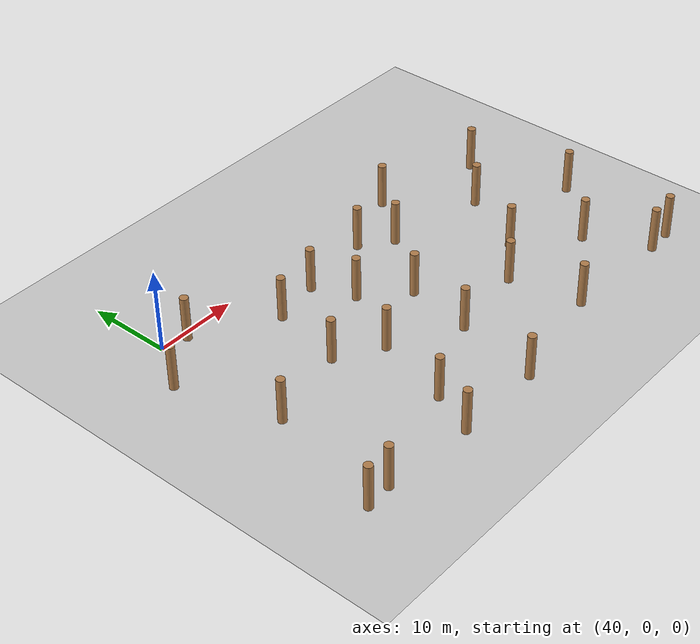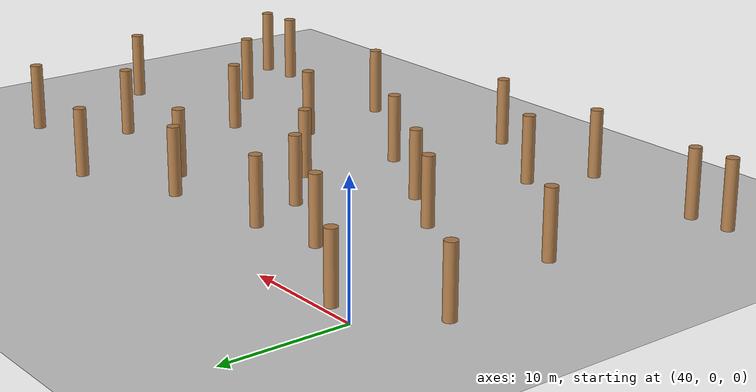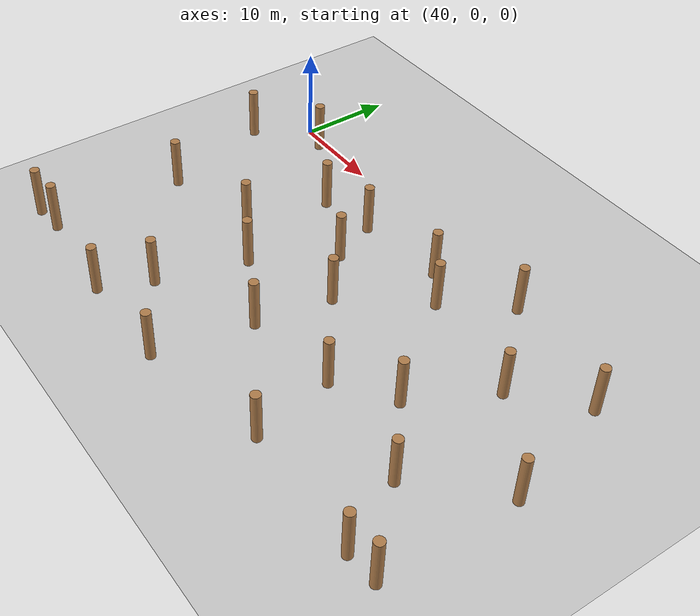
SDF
<sdf version="1.6">
 <world name="default">
  <model name="ground_plane">
   <static>1</static>
   <link name="link">
    <collision name="collision">
     <geometry><plane><normal>0 0 1</normal><size>100 100</size></plane></geometry>
     <surface><friction><ode><mu>100</mu><mu2>50</mu2></ode></friction></surface>
    </collision>
    <visual name="visual">
     <cast_shadows>0</cast_shadows>
     <geometry><plane><normal>0 0 1</normal><size>100 100</size></plane></geometry>
     <material>
      <script><uri>file://media/materials/scripts/gazebo.material</uri><name>Gazebo/Grey</name></script>
     </material>
    </visual>
   </link>
  </model>
  <model name="WoodPillars_4">
   <link name="link">
    <inertial>
     <mass>1</mass>
     <inertia><ixx>0.145833</ixx><ixy>0</ixy><ixz>0</ixz><iyy>0.145833</iyy><iyz>0</iyz><izz>0.125</izz></inertia>
    </inertial>
    <visual name="visual">
     <geometry><cylinder><radius>0.5</radius><length>5.50507</length></cylinder></geometry>
     <material>
      <script><name>Gazebo/Wood</name><uri>file://media/materials/scripts/gazebo.material</uri></script>
     </material>
    </visual>
    <collision name="collision">
     <geometry><cylinder><radius>0.5</radius><length>5.50507</length></cylinder></geometry>
     <surface>
      <friction>
       <ode><mu>1</mu><mu2>1</mu2><fdir1>0 0 0</fdir1><slip1>0</slip1><slip2>0</slip2></ode>
       <torsional>
        <coefficient>1</coefficient>
        <patch_radius>0</patch_radius>
        <surface_radius>0</surface_radius>
        <use_patch_radius>1</use_patch_radius>
        <ode><slip>0</slip></ode>
       </torsional>
      </friction>
      <bounce><restitution_coefficient>0</restitution_coefficient><threshold>1e+06</threshold></bounce>
      <contact>
       <collide_without_contact>0</collide_without_contact>
       <collide_without_contact_bitmask>1</collide_without_contact_bitmask>
       <collide_bitmask>1</collide_bitmask>
       <ode>
        <soft_cfm>0</soft_cfm>
        <soft_erp>0.2</soft_erp>
        <kp>1e+13</kp>
        <kd>1</kd>
        <max_vel>0.01</max_vel>
        <min_depth>0</min_depth>
       </ode>
       <bullet>
        <split_impulse>1</split_impulse>
        <split_impulse_penetration_threshold>-0.01</split_impulse_penetration_threshold>
        <soft_cfm>0</soft_cfm>
        <soft_erp>0.2</soft_erp>
        <kp>1e+13</kp>
        <kd>1</kd>
       </bullet>
      </contact>
     </surface>
    </collision>
   </link>
   <link name="link_clone">
    <inertial>
     <mass>1</mass>
     <inertia><ixx>0.145833</ixx><ixy>0</ixy><ixz>0</ixz><iyy>0.145833</iyy><iyz>0</iyz><izz>0.125</izz></inertia>
    </inertial>
    <pose>17.6954 -2.91348 -2e-06 0 -0 -0.001289</pose>
    <visual name="visual">
     <geometry><cylinder><radius>0.5</radius><length>5.50507</length></cylinder></geometry>
     <material>
      <script><name>Gazebo/Wood</name><uri>file://media/materials/scripts/gazebo.material</uri></script>
      <shader type="pixel"/>
     </material>
    </visual>
    <collision name="collision">
     <geometry><cylinder><radius>0.5</radius><length>5.50507</length></cylinder></geometry>
     <surface>
      <friction>
       <ode><mu>1</mu><mu2>1</mu2><fdir1>0 0 0</fdir1><slip1>0</slip1><slip2>0</slip2></ode>
       <torsional>
        <coefficient>1</coefficient>
        <patch_radius>0</patch_radius>
        <surface_radius>0</surface_radius>
        <use_patch_radius>1</use_patch_radius>
        <ode><slip>0</slip></ode>
       </torsional>
      </friction>
      <bounce><restitution_coefficient>0</restitution_coefficient><threshold>1e+06</threshold></bounce>
      <contact>
       <collide_without_contact>0</collide_without_contact>
       <collide_without_contact_bitmask>1</collide_without_contact_bitmask>
       <collide_bitmask>1</collide_bitmask>
       <ode>
        <soft_cfm>0</soft_cfm>
        <soft_erp>0.2</soft_erp>
        <kp>1e+13</kp>
        <kd>1</kd>
        <max_vel>0.01</max_vel>
        <min_depth>0</min_depth>
       </ode>
       <bullet>
        <split_impulse>1</split_impulse>
        <split_impulse_penetration_threshold>-0.01</split_impulse_penetration_threshold>
        <soft_cfm>0</soft_cfm>
        <soft_erp>0.2</soft_erp>
        <kp>1e+13</kp>
        <kd>1</kd>
       </bullet>
      </contact>
     </surface>
    </collision>
   </link>
   <link name="link_clone_10">
    <inertial>
     <mass>1</mass>
     <inertia><ixx>0.145833</ixx><ixy>0</ixy><ixz>0</ixz><iyy>0.145833</iyy><iyz>0</iyz><izz>0.125</izz></inertia>
    </inertial>
    <pose>2.50237 12.8939 0 0 -0 -0.001289</pose>
    <visual name="visual">
     <geometry><cylinder><radius>0.5</radius><length>5.50507</length></cylinder></geometry>
     <material>
      <script><name>Gazebo/Wood</name><uri>file://media/materials/scripts/gazebo.material</uri></script>
      <shader type="pixel"/>
     </material>
    </visual>
    <collision name="collision">
     <geometry><cylinder><radius>0.5</radius><length>5.50507</length></cylinder></geometry>
     <surface>
      <friction>
       <ode><mu>1</mu><mu2>1</mu2><fdir1>0 0 0</fdir1><slip1>0</slip1><slip2>0</slip2></ode>
       <torsional>
        <coefficient>1</coefficient>
        <patch_radius>0</patch_radius>
        <surface_radius>0</surface_radius>
        <use_patch_radius>1</use_patch_radius>
        <ode><slip>0</slip></ode>
       </torsional>
      </friction>
      <bounce><restitution_coefficient>0</restitution_coefficient><threshold>1e+06</threshold></bounce>
      <contact>
       <collide_without_contact>0</collide_without_contact>
       <collide_without_contact_bitmask>1</collide_without_contact_bitmask>
       <collide_bitmask>1</collide_bitmask>
       <ode>
        <soft_cfm>0</soft_cfm>
        <soft_erp>0.2</soft_erp>
        <kp>1e+13</kp>
        <kd>1</kd>
        <max_vel>0.01</max_vel>
        <min_depth>0</min_depth>
       </ode>
       <bullet>
        <split_impulse>1</split_impulse>
        <split_impulse_penetration_threshold>-0.01</split_impulse_penetration_threshold>
        <soft_cfm>0</soft_cfm>
        <soft_erp>0.2</soft_erp>
        <kp>1e+13</kp>
        <kd>1</kd>
       </bullet>
      </contact>
     </surface>
    </collision>
   </link>
   <link name="link_clone_11">
    <inertial>
     <mass>1</mass>
     <inertia><ixx>0.145833</ixx><ixy>0</ixy><ixz>0</ixz><iyy>0.145833</iyy><iyz>0</iyz><izz>0.125</izz></inertia>
    </inertial>
    <pose>20.1245 17.4079 -2e-06 0 -0 -0.001289</pose>
    <visual name="visual">
     <geometry><cylinder><radius>0.5</radius><length>5.50507</length></cylinder></geometry>
     <material>
      <script><name>Gazebo/Wood</name><uri>file://media/materials/scripts/gazebo.material</uri></script>
      <shader type="pixel"/>
     </material>
    </visual>
    <collision name="collision">
     <geometry><cylinder><radius>0.5</radius><length>5.50507</length></cylinder></geometry>
     <surface>
      <friction>
       <ode><mu>1</mu><mu2>1</mu2><fdir1>0 0 0</fdir1><slip1>0</slip1><slip2>0</slip2></ode>
       <torsional>
        <coefficient>1</coefficient>
        <patch_radius>0</patch_radius>
        <surface_radius>0</surface_radius>
        <use_patch_radius>1</use_patch_radius>
        <ode><slip>0</slip></ode>
       </torsional>
      </friction>
      <bounce><restitution_coefficient>0</restitution_coefficient><threshold>1e+06</threshold></bounce>
      <contact>
       <collide_without_contact>0</collide_without_contact>
       <collide_without_contact_bitmask>1</collide_without_contact_bitmask>
       <collide_bitmask>1</collide_bitmask>
       <ode>
        <soft_cfm>0</soft_cfm>
        <soft_erp>0.2</soft_erp>
        <kp>1e+13</kp>
        <kd>1</kd>
        <max_vel>0.01</max_vel>
        <min_depth>0</min_depth>
       </ode>
       <bullet>
        <split_impulse>1</split_impulse>
        <split_impulse_penetration_threshold>-0.01</split_impulse_penetration_threshold>
        <soft_cfm>0</soft_cfm>
        <soft_erp>0.2</soft_erp>
        <kp>1e+13</kp>
        <kd>1</kd>
       </bullet>
      </contact>
     </surface>
    </collision>
   </link>
   <link name="link_clone_12">
    <inertial>
     <mass>1</mass>
     <inertia><ixx>0.145833</ixx><ixy>0</ixy><ixz>0</ixz><iyy>0.145833</iyy><iyz>0</iyz><izz>0.125</izz></inertia>
    </inertial>
    <pose>36.6063 2.3916 -3e-06 0 -0 -0.001289</pose>
    <visual name="visual">
     <geometry><cylinder><radius>0.5</radius><length>5.50507</length></cylinder></geometry>
     <material>
      <script><name>Gazebo/Wood</name><uri>file://media/materials/scripts/gazebo.material</uri></script>
      <shader type="pixel"/>
     </material>
    </visual>
    <collision name="collision">
     <geometry><cylinder><radius>0.5</radius><length>5.50507</length></cylinder></geometry>
     <surface>
      <friction>
       <ode><mu>1</mu><mu2>1</mu2><fdir1>0 0 0</fdir1><slip1>0</slip1><slip2>0</slip2></ode>
       <torsional>
        <coefficient>1</coefficient>
        <patch_radius>0</patch_radius>
        <surface_radius>0</surface_radius>
        <use_patch_radius>1</use_patch_radius>
        <ode><slip>0</slip></ode>
       </torsional>
      </friction>
      <bounce><restitution_coefficient>0</restitution_coefficient><threshold>1e+06</threshold></bounce>
      <contact>
       <collide_without_contact>0</collide_without_contact>
       <collide_without_contact_bitmask>1</collide_without_contact_bitmask>
       <collide_bitmask>1</collide_bitmask>
       <ode>
        <soft_cfm>0</soft_cfm>
        <soft_erp>0.2</soft_erp>
        <kp>1e+13</kp>
        <kd>1</kd>
        <max_vel>0.01</max_vel>
        <min_depth>0</min_depth>
       </ode>
       <bullet>
        <split_impulse>1</split_impulse>
        <split_impulse_penetration_threshold>-0.01</split_impulse_penetration_threshold>
        <soft_cfm>0</soft_cfm>
        <soft_erp>0.2</soft_erp>
        <kp>1e+13</kp>
        <kd>1</kd>
       </bullet>
      </contact>
     </surface>
    </collision>
   </link>
   <link name="link_clone_16">
    <inertial>
     <mass>1</mass>
     <inertia><ixx>0.145833</ixx><ixy>0</ixy><ixz>0</ixz><iyy>0.145833</iyy><iyz>0</iyz><izz>0.125</izz></inertia>
    </inertial>
    <pose>32.9662 -11.9429 -3e-06 0 -0 -0.001289</pose>
    <visual name="visual">
     <geometry><cylinder><radius>0.5</radius><length>5.50507</length></cylinder></geometry>
     <material>
      <script><name>Gazebo/Wood</name><uri>file://media/materials/scripts/gazebo.material</uri></script>
      <shader type="pixel"/>
     </material>
    </visual>
    <collision name="collision">
     <geometry><cylinder><radius>0.5</radius><length>5.50507</length></cylinder></geometry>
     <surface>
      <friction>
       <ode><mu>1</mu><mu2>1</mu2><fdir1>0 0 0</fdir1><slip1>0</slip1><slip2>0</slip2></ode>
       <torsional>
        <coefficient>1</coefficient>
        <patch_radius>0</patch_radius>
        <surface_radius>0</surface_radius>
        <use_patch_radius>1</use_patch_radius>
        <ode><slip>0</slip></ode>
       </torsional>
      </friction>
      <bounce><restitution_coefficient>0</restitution_coefficient><threshold>1e+06</threshold></bounce>
      <contact>
       <collide_without_contact>0</collide_without_contact>
       <collide_without_contact_bitmask>1</collide_without_contact_bitmask>
       <collide_bitmask>1</collide_bitmask>
       <ode>
        <soft_cfm>0</soft_cfm>
        <soft_erp>0.2</soft_erp>
        <kp>1e+13</kp>
        <kd>1</kd>
        <max_vel>0.01</max_vel>
        <min_depth>0</min_depth>
       </ode>
       <bullet>
        <split_impulse>1</split_impulse>
        <split_impulse_penetration_threshold>-0.01</split_impulse_penetration_threshold>
        <soft_cfm>0</soft_cfm>
        <soft_erp>0.2</soft_erp>
        <kp>1e+13</kp>
        <kd>1</kd>
       </bullet>
      </contact>
     </surface>
    </collision>
   </link>
   <link name="link_clone_17">
    <inertial>
     <mass>1</mass>
     <inertia><ixx>0.145833</ixx><ixy>0</ixy><ixz>0</ixz><iyy>0.145833</iyy><iyz>0</iyz><izz>0.125</izz></inertia>
    </inertial>
    <pose>19.3784 -11.4604 -2e-06 0 -0 -0.001289</pose>
    <visual name="visual">
     <geometry><cylinder><radius>0.5</radius><length>5.50507</length></cylinder></geometry>
     <material>
      <script><name>Gazebo/Wood</name><uri>file://media/materials/scripts/gazebo.material</uri></script>
      <shader type="pixel"/>
     </material>
    </visual>
    <collision name="collision">
     <geometry><cylinder><radius>0.5</radius><length>5.50507</length></cylinder></geometry>
     <surface>
      <friction>
       <ode><mu>1</mu><mu2>1</mu2><fdir1>0 0 0</fdir1><slip1>0</slip1><slip2>0</slip2></ode>
       <torsional>
        <coefficient>1</coefficient>
        <patch_radius>0</patch_radius>
        <surface_radius>0</surface_radius>
        <use_patch_radius>1</use_patch_radius>
        <ode><slip>0</slip></ode>
       </torsional>
      </friction>
      <bounce><restitution_coefficient>0</restitution_coefficient><threshold>1e+06</threshold></bounce>
      <contact>
       <collide_without_contact>0</collide_without_contact>
       <collide_without_contact_bitmask>1</collide_without_contact_bitmask>
       <collide_bitmask>1</collide_bitmask>
       <ode>
        <soft_cfm>0</soft_cfm>
        <soft_erp>0.2</soft_erp>
        <kp>1e+13</kp>
        <kd>1</kd>
        <max_vel>0.01</max_vel>
        <min_depth>0</min_depth>
       </ode>
       <bullet>
        <split_impulse>1</split_impulse>
        <split_impulse_penetration_threshold>-0.01</split_impulse_penetration_threshold>
        <soft_cfm>0</soft_cfm>
        <soft_erp>0.2</soft_erp>
        <kp>1e+13</kp>
        <kd>1</kd>
       </bullet>
      </contact>
     </surface>
    </collision>
   </link>
   <link name="link_clone_18">
    <inertial>
     <mass>1</mass>
     <inertia><ixx>0.145833</ixx><ixy>0</ixy><ixz>0</ixz><iyy>0.145833</iyy><iyz>0</iyz><izz>0.125</izz></inertia>
    </inertial>
    <pose>9.1573 3.67739 -1e-06 0 -0 -0.001289</pose>
    <visual name="visual">
     <geometry><cylinder><radius>0.5</radius><length>5.50507</length></cylinder></geometry>
     <material>
      <script><name>Gazebo/Wood</name><uri>file://media/materials/scripts/gazebo.material</uri></script>
      <shader type="pixel"/>
     </material>
    </visual>
    <collision name="collision">
     <geometry><cylinder><radius>0.5</radius><length>5.50507</length></cylinder></geometry>
     <surface>
      <friction>
       <ode><mu>1</mu><mu2>1</mu2><fdir1>0 0 0</fdir1><slip1>0</slip1><slip2>0</slip2></ode>
       <torsional>
        <coefficient>1</coefficient>
        <patch_radius>0</patch_radius>
        <surface_radius>0</surface_radius>
        <use_patch_radius>1</use_patch_radius>
        <ode><slip>0</slip></ode>
       </torsional>
      </friction>
      <bounce><restitution_coefficient>0</restitution_coefficient><threshold>1e+06</threshold></bounce>
      <contact>
       <collide_without_contact>0</collide_without_contact>
       <collide_without_contact_bitmask>1</collide_without_contact_bitmask>
       <collide_bitmask>1</collide_bitmask>
       <ode>
        <soft_cfm>0</soft_cfm>
        <soft_erp>0.2</soft_erp>
        <kp>1e+13</kp>
        <kd>1</kd>
        <max_vel>0.01</max_vel>
        <min_depth>0</min_depth>
       </ode>
       <bullet>
        <split_impulse>1</split_impulse>
        <split_impulse_penetration_threshold>-0.01</split_impulse_penetration_threshold>
        <soft_cfm>0</soft_cfm>
        <soft_erp>0.2</soft_erp>
        <kp>1e+13</kp>
        <kd>1</kd>
       </bullet>
      </contact>
     </surface>
    </collision>
   </link>
   <link name="link_clone_19">
    <inertial>
     <mass>1</mass>
     <inertia><ixx>0.145833</ixx><ixy>0</ixy><ixz>0</ixz><iyy>0.145833</iyy><iyz>0</iyz><izz>0.125</izz></inertia>
    </inertial>
    <pose>-3.28611 11.8265 -0 0 -0 -0.001289</pose>
    <visual name="visual">
     <geometry><cylinder><radius>0.5</radius><length>5.50507</length></cylinder></geometry>
     <material>
      <script><name>Gazebo/Wood</name><uri>file://media/materials/scripts/gazebo.material</uri></script>
      <shader type="pixel"/>
     </material>
    </visual>
    <collision name="collision">
     <geometry><cylinder><radius>0.5</radius><length>5.50507</length></cylinder></geometry>
     <surface>
      <friction>
       <ode><mu>1</mu><mu2>1</mu2><fdir1>0 0 0</fdir1><slip1>0</slip1><slip2>0</slip2></ode>
       <torsional>
        <coefficient>1</coefficient>
        <patch_radius>0</patch_radius>
        <surface_radius>0</surface_radius>
        <use_patch_radius>1</use_patch_radius>
        <ode><slip>0</slip></ode>
       </torsional>
      </friction>
      <bounce><restitution_coefficient>0</restitution_coefficient><threshold>1e+06</threshold></bounce>
      <contact>
       <collide_without_contact>0</collide_without_contact>
       <collide_without_contact_bitmask>1</collide_without_contact_bitmask>
       <collide_bitmask>1</collide_bitmask>
       <ode>
        <soft_cfm>0</soft_cfm>
        <soft_erp>0.2</soft_erp>
        <kp>1e+13</kp>
        <kd>1</kd>
        <max_vel>0.01</max_vel>
        <min_depth>0</min_depth>
       </ode>
       <bullet>
        <split_impulse>1</split_impulse>
        <split_impulse_penetration_threshold>-0.01</split_impulse_penetration_threshold>
        <soft_cfm>0</soft_cfm>
        <soft_erp>0.2</soft_erp>
        <kp>1e+13</kp>
        <kd>1</kd>
       </bullet>
      </contact>
     </surface>
    </collision>
   </link>
   <link name="link_clone_20">
    <inertial>
     <mass>1</mass>
     <inertia><ixx>0.145833</ixx><ixy>0</ixy><ixz>0</ixz><iyy>0.145833</iyy><iyz>0</iyz><izz>0.125</izz></inertia>
    </inertial>
    <pose>-2.64423 -9.12396 -0 0 -0 -0.001289</pose>
    <visual name="visual">
     <geometry><cylinder><radius>0.5</radius><length>5.50507</length></cylinder></geometry>
     <material>
      <script><name>Gazebo/Wood</name><uri>file://media/materials/scripts/gazebo.material</uri></script>
      <shader type="pixel"/>
     </material>
    </visual>
    <collision name="collision">
     <geometry><cylinder><radius>0.5</radius><length>5.50507</length></cylinder></geometry>
     <surface>
      <friction>
       <ode><mu>1</mu><mu2>1</mu2><fdir1>0 0 0</fdir1><slip1>0</slip1><slip2>0</slip2></ode>
       <torsional>
        <coefficient>1</coefficient>
        <patch_radius>0</patch_radius>
        <surface_radius>0</surface_radius>
        <use_patch_radius>1</use_patch_radius>
        <ode><slip>0</slip></ode>
       </torsional>
      </friction>
      <bounce><restitution_coefficient>0</restitution_coefficient><threshold>1e+06</threshold></bounce>
      <contact>
       <collide_without_contact>0</collide_without_contact>
       <collide_without_contact_bitmask>1</collide_without_contact_bitmask>
       <collide_bitmask>1</collide_bitmask>
       <ode>
        <soft_cfm>0</soft_cfm>
        <soft_erp>0.2</soft_erp>
        <kp>1e+13</kp>
        <kd>1</kd>
        <max_vel>0.01</max_vel>
        <min_depth>0</min_depth>
       </ode>
       <bullet>
        <split_impulse>1</split_impulse>
        <split_impulse_penetration_threshold>-0.01</split_impulse_penetration_threshold>
        <soft_cfm>0</soft_cfm>
        <soft_erp>0.2</soft_erp>
        <kp>1e+13</kp>
        <kd>1</kd>
       </bullet>
      </contact>
     </surface>
    </collision>
   </link>
   <link name="link_clone_21">
    <inertial>
     <mass>1</mass>
     <inertia><ixx>0.145833</ixx><ixy>0</ixy><ixz>0</ixz><iyy>0.145833</iyy><iyz>0</iyz><izz>0.125</izz></inertia>
    </inertial>
    <pose>15.2748 11.406 -1e-06 0 -0 -0.001289</pose>
    <visual name="visual">
     <geometry><cylinder><radius>0.5</radius><length>5.50507</length></cylinder></geometry>
     <material>
      <script><name>Gazebo/Wood</name><uri>file://media/materials/scripts/gazebo.material</uri></script>
      <shader type="pixel"/>
     </material>
    </visual>
    <collision name="collision">
     <geometry><cylinder><radius>0.5</radius><length>5.50507</length></cylinder></geometry>
     <surface>
      <friction>
       <ode><mu>1</mu><mu2>1</mu2><fdir1>0 0 0</fdir1><slip1>0</slip1><slip2>0</slip2></ode>
       <torsional>
        <coefficient>1</coefficient>
        <patch_radius>0</patch_radius>
        <surface_radius>0</surface_radius>
        <use_patch_radius>1</use_patch_radius>
        <ode><slip>0</slip></ode>
       </torsional>
      </friction>
      <bounce><restitution_coefficient>0</restitution_coefficient><threshold>1e+06</threshold></bounce>
      <contact>
       <collide_without_contact>0</collide_without_contact>
       <collide_without_contact_bitmask>1</collide_without_contact_bitmask>
       <collide_bitmask>1</collide_bitmask>
       <ode>
        <soft_cfm>0</soft_cfm>
        <soft_erp>0.2</soft_erp>
        <kp>1e+13</kp>
        <kd>1</kd>
        <max_vel>0.01</max_vel>
        <min_depth>0</min_depth>
       </ode>
       <bullet>
        <split_impulse>1</split_impulse>
        <split_impulse_penetration_threshold>-0.01</split_impulse_penetration_threshold>
        <soft_cfm>0</soft_cfm>
        <soft_erp>0.2</soft_erp>
        <kp>1e+13</kp>
        <kd>1</kd>
       </bullet>
      </contact>
     </surface>
    </collision>
   </link>
   <link name="link_clone_22">
    <inertial>
     <mass>1</mass>
     <inertia><ixx>0.145833</ixx><ixy>0</ixy><ixz>0</ixz><iyy>0.145833</iyy><iyz>0</iyz><izz>0.125</izz></inertia>
    </inertial>
    <pose>27.313 9.05961 -2e-06 0 -0 -0.001289</pose>
    <visual name="visual">
     <geometry><cylinder><radius>0.5</radius><length>5.50507</length></cylinder></geometry>
     <material>
      <script><name>Gazebo/Wood</name><uri>file://media/materials/scripts/gazebo.material</uri></script>
      <shader type="pixel"/>
     </material>
    </visual>
    <collision name="collision">
     <geometry><cylinder><radius>0.5</radius><length>5.50507</length></cylinder></geometry>
     <surface>
      <friction>
       <ode><mu>1</mu><mu2>1</mu2><fdir1>0 0 0</fdir1><slip1>0</slip1><slip2>0</slip2></ode>
       <torsional>
        <coefficient>1</coefficient>
        <patch_radius>0</patch_radius>
        <surface_radius>0</surface_radius>
        <use_patch_radius>1</use_patch_radius>
        <ode><slip>0</slip></ode>
       </torsional>
      </friction>
      <bounce><restitution_coefficient>0</restitution_coefficient><threshold>1e+06</threshold></bounce>
      <contact>
       <collide_without_contact>0</collide_without_contact>
       <collide_without_contact_bitmask>1</collide_without_contact_bitmask>
       <collide_bitmask>1</collide_bitmask>
       <ode>
        <soft_cfm>0</soft_cfm>
        <soft_erp>0.2</soft_erp>
        <kp>1e+13</kp>
        <kd>1</kd>
        <max_vel>0.01</max_vel>
        <min_depth>0</min_depth>
       </ode>
       <bullet>
        <split_impulse>1</split_impulse>
        <split_impulse_penetration_threshold>-0.01</split_impulse_penetration_threshold>
        <soft_cfm>0</soft_cfm>
        <soft_erp>0.2</soft_erp>
        <kp>1e+13</kp>
        <kd>1</kd>
       </bullet>
      </contact>
     </surface>
    </collision>
   </link>
   <link name="link_clone_23">
    <inertial>
     <mass>1</mass>
     <inertia><ixx>0.145833</ixx><ixy>0</ixy><ixz>0</ixz><iyy>0.145833</iyy><iyz>0</iyz><izz>0.125</izz></inertia>
    </inertial>
    <pose>29.5176 -4.71623 -3e-06 0 -0 -0.001289</pose>
    <visual name="visual">
     <geometry><cylinder><radius>0.5</radius><length>5.50507</length></cylinder></geometry>
     <material>
      <script><name>Gazebo/Wood</name><uri>file://media/materials/scripts/gazebo.material</uri></script>
      <shader type="pixel"/>
     </material>
    </visual>
    <collision name="collision">
     <geometry><cylinder><radius>0.5</radius><length>5.50507</length></cylinder></geometry>
     <surface>
      <friction>
       <ode><mu>1</mu><mu2>1</mu2><fdir1>0 0 0</fdir1><slip1>0</slip1><slip2>0</slip2></ode>
       <torsional>
        <coefficient>1</coefficient>
        <patch_radius>0</patch_radius>
        <surface_radius>0</surface_radius>
        <use_patch_radius>1</use_patch_radius>
        <ode><slip>0</slip></ode>
       </torsional>
      </friction>
      <bounce><restitution_coefficient>0</restitution_coefficient><threshold>1e+06</threshold></bounce>
      <contact>
       <collide_without_contact>0</collide_without_contact>
       <collide_without_contact_bitmask>1</collide_without_contact_bitmask>
       <collide_bitmask>1</collide_bitmask>
       <ode>
        <soft_cfm>0</soft_cfm>
        <soft_erp>0.2</soft_erp>
        <kp>1e+13</kp>
        <kd>1</kd>
        <max_vel>0.01</max_vel>
        <min_depth>0</min_depth>
       </ode>
       <bullet>
        <split_impulse>1</split_impulse>
        <split_impulse_penetration_threshold>-0.01</split_impulse_penetration_threshold>
        <soft_cfm>0</soft_cfm>
        <soft_erp>0.2</soft_erp>
        <kp>1e+13</kp>
        <kd>1</kd>
       </bullet>
      </contact>
     </surface>
    </collision>
   </link>
   <link name="link_clone_24">
    <inertial>
     <mass>1</mass>
     <inertia><ixx>0.145833</ixx><ixy>0</ixy><ixz>0</ixz><iyy>0.145833</iyy><iyz>0</iyz><izz>0.125</izz></inertia>
    </inertial>
    <pose>7.84688 -4.26113 -1e-06 0 -0 -0.001289</pose>
    <visual name="visual">
     <geometry><cylinder><radius>0.5</radius><length>5.50507</length></cylinder></geometry>
     <material>
      <script><name>Gazebo/Wood</name><uri>file://media/materials/scripts/gazebo.material</uri></script>
      <shader type="pixel"/>
     </material>
    </visual>
    <collision name="collision">
     <geometry><cylinder><radius>0.5</radius><length>5.50507</length></cylinder></geometry>
     <surface>
      <friction>
       <ode><mu>1</mu><mu2>1</mu2><fdir1>0 0 0</fdir1><slip1>0</slip1><slip2>0</slip2></ode>
       <torsional>
        <coefficient>1</coefficient>
        <patch_radius>0</patch_radius>
        <surface_radius>0</surface_radius>
        <use_patch_radius>1</use_patch_radius>
        <ode><slip>0</slip></ode>
       </torsional>
      </friction>
      <bounce><restitution_coefficient>0</restitution_coefficient><threshold>1e+06</threshold></bounce>
      <contact>
       <collide_without_contact>0</collide_without_contact>
       <collide_without_contact_bitmask>1</collide_without_contact_bitmask>
       <collide_bitmask>1</collide_bitmask>
       <ode>
        <soft_cfm>0</soft_cfm>
        <soft_erp>0.2</soft_erp>
        <kp>1e+13</kp>
        <kd>1</kd>
        <max_vel>0.01</max_vel>
        <min_depth>0</min_depth>
       </ode>
       <bullet>
        <split_impulse>1</split_impulse>
        <split_impulse_penetration_threshold>-0.01</split_impulse_penetration_threshold>
        <soft_cfm>0</soft_cfm>
        <soft_erp>0.2</soft_erp>
        <kp>1e+13</kp>
        <kd>1</kd>
       </bullet>
      </contact>
     </surface>
    </collision>
   </link>
   <link name="link_clone_25">
    <inertial>
     <mass>1</mass>
     <inertia><ixx>0.145833</ixx><ixy>0</ixy><ixz>0</ixz><iyy>0.145833</iyy><iyz>0</iyz><izz>0.125</izz></inertia>
    </inertial>
    <pose>11.7271 14.0632 -1e-06 0 -0 -0.001289</pose>
    <visual name="visual">
     <geometry><cylinder><radius>0.5</radius><length>5.50507</length></cylinder></geometry>
     <material>
      <script><name>Gazebo/Wood</name><uri>file://media/materials/scripts/gazebo.material</uri></script>
      <shader type="pixel"/>
     </material>
    </visual>
    <collision name="collision">
     <geometry><cylinder><radius>0.5</radius><length>5.50507</length></cylinder></geometry>
     <surface>
      <friction>
       <ode><mu>1</mu><mu2>1</mu2><fdir1>0 0 0</fdir1><slip1>0</slip1><slip2>0</slip2></ode>
       <torsional>
        <coefficient>1</coefficient>
        <patch_radius>0</patch_radius>
        <surface_radius>0</surface_radius>
        <use_patch_radius>1</use_patch_radius>
        <ode><slip>0</slip></ode>
       </torsional>
      </friction>
      <bounce><restitution_coefficient>0</restitution_coefficient><threshold>1e+06</threshold></bounce>
      <contact>
       <collide_without_contact>0</collide_without_contact>
       <collide_without_contact_bitmask>1</collide_without_contact_bitmask>
       <collide_bitmask>1</collide_bitmask>
       <ode>
        <soft_cfm>0</soft_cfm>
        <soft_erp>0.2</soft_erp>
        <kp>1e+13</kp>
        <kd>1</kd>
        <max_vel>0.01</max_vel>
        <min_depth>0</min_depth>
       </ode>
       <bullet>
        <split_impulse>1</split_impulse>
        <split_impulse_penetration_threshold>-0.01</split_impulse_penetration_threshold>
        <soft_cfm>0</soft_cfm>
        <soft_erp>0.2</soft_erp>
        <kp>1e+13</kp>
        <kd>1</kd>
       </bullet>
      </contact>
     </surface>
    </collision>
   </link>
   <link name="link_clone_30">
    <inertial>
     <mass>1</mass>
     <inertia><ixx>0.145833</ixx><ixy>0</ixy><ixz>0</ixz><iyy>0.145833</iyy><iyz>0</iyz><izz>0.125</izz></inertia>
    </inertial>
    <pose>4.46339 7.97492 0 0 -0 -0.001289</pose>
    <visual name="visual">
     <geometry><cylinder><radius>0.5</radius><length>5.50507</length></cylinder></geometry>
     <material>
      <script><name>Gazebo/Wood</name><uri>file://media/materials/scripts/gazebo.material</uri></script>
      <shader type="pixel"/>
     </material>
    </visual>
    <collision name="collision">
     <geometry><cylinder><radius>0.5</radius><length>5.50507</length></cylinder></geometry>
     <surface>
      <friction>
       <ode><mu>1</mu><mu2>1</mu2><fdir1>0 0 0</fdir1><slip1>0</slip1><slip2>0</slip2></ode>
       <torsional>
        <coefficient>1</coefficient>
        <patch_radius>0</patch_radius>
        <surface_radius>0</surface_radius>
        <use_patch_radius>1</use_patch_radius>
        <ode><slip>0</slip></ode>
       </torsional>
      </friction>
      <bounce><restitution_coefficient>0</restitution_coefficient><threshold>1e+06</threshold></bounce>
      <contact>
       <collide_without_contact>0</collide_without_contact>
       <collide_without_contact_bitmask>1</collide_without_contact_bitmask>
       <collide_bitmask>1</collide_bitmask>
       <ode>
        <soft_cfm>0</soft_cfm>
        <soft_erp>0.2</soft_erp>
        <kp>1e+13</kp>
        <kd>1</kd>
        <max_vel>0.01</max_vel>
        <min_depth>0</min_depth>
       </ode>
       <bullet>
        <split_impulse>1</split_impulse>
        <split_impulse_penetration_threshold>-0.01</split_impulse_penetration_threshold>
        <soft_cfm>0</soft_cfm>
        <soft_erp>0.2</soft_erp>
        <kp>1e+13</kp>
        <kd>1</kd>
       </bullet>
      </contact>
     </surface>
    </collision>
   </link>
   <link name="link_clone_32">
    <inertial>
     <mass>1</mass>
     <inertia><ixx>0.145833</ixx><ixy>0</ixy><ixz>0</ixz><iyy>0.145833</iyy><iyz>0</iyz><izz>0.125</izz></inertia>
    </inertial>
    <pose>-4.82669 -14.2698 -0 0 -0 -0.001289</pose>
    <visual name="visual">
     <geometry><cylinder><radius>0.5</radius><length>5.50507</length></cylinder></geometry>
     <material>
      <script><name>Gazebo/Wood</name><uri>file://media/materials/scripts/gazebo.material</uri></script>
      <shader type="pixel"/>
     </material>
    </visual>
    <collision name="collision">
     <geometry><cylinder><radius>0.5</radius><length>5.50507</length></cylinder></geometry>
     <surface>
      <friction>
       <ode><mu>1</mu><mu2>1</mu2><fdir1>0 0 0</fdir1><slip1>0</slip1><slip2>0</slip2></ode>
       <torsional>
        <coefficient>1</coefficient>
        <patch_radius>0</patch_radius>
        <surface_radius>0</surface_radius>
        <use_patch_radius>1</use_patch_radius>
        <ode><slip>0</slip></ode>
       </torsional>
      </friction>
      <bounce><restitution_coefficient>0</restitution_coefficient><threshold>1e+06</threshold></bounce>
      <contact>
       <collide_without_contact>0</collide_without_contact>
       <collide_without_contact_bitmask>1</collide_without_contact_bitmask>
       <collide_bitmask>1</collide_bitmask>
       <ode>
        <soft_cfm>0</soft_cfm>
        <soft_erp>0.2</soft_erp>
        <kp>1e+13</kp>
        <kd>1</kd>
        <max_vel>0.01</max_vel>
        <min_depth>0</min_depth>
       </ode>
       <bullet>
        <split_impulse>1</split_impulse>
        <split_impulse_penetration_threshold>-0.01</split_impulse_penetration_threshold>
        <soft_cfm>0</soft_cfm>
        <soft_erp>0.2</soft_erp>
        <kp>1e+13</kp>
        <kd>1</kd>
       </bullet>
      </contact>
     </surface>
    </collision>
   </link>
   <link name="link_clone_35">
    <inertial>
     <mass>1</mass>
     <inertia><ixx>0.145833</ixx><ixy>0</ixy><ixz>0</ixz><iyy>0.145833</iyy><iyz>0</iyz><izz>0.125</izz></inertia>
    </inertial>
    <pose>-5.14728 3.10998 -0 0 -0 -0.001289</pose>
    <visual name="visual">
     <geometry><cylinder><radius>0.5</radius><length>5.50507</length></cylinder></geometry>
     <material>
      <script><name>Gazebo/Wood</name><uri>file://media/materials/scripts/gazebo.material</uri></script>
      <shader type="pixel"/>
     </material>
    </visual>
    <collision name="collision">
     <geometry><cylinder><radius>0.5</radius><length>5.50507</length></cylinder></geometry>
     <surface>
      <friction>
       <ode><mu>1</mu><mu2>1</mu2><fdir1>0 0 0</fdir1><slip1>0</slip1><slip2>0</slip2></ode>
       <torsional>
        <coefficient>1</coefficient>
        <patch_radius>0</patch_radius>
        <surface_radius>0</surface_radius>
        <use_patch_radius>1</use_patch_radius>
        <ode><slip>0</slip></ode>
       </torsional>
      </friction>
      <bounce><restitution_coefficient>0</restitution_coefficient><threshold>1e+06</threshold></bounce>
      <contact>
       <collide_without_contact>0</collide_without_contact>
       <collide_without_contact_bitmask>1</collide_without_contact_bitmask>
       <collide_bitmask>1</collide_bitmask>
       <ode>
        <soft_cfm>0</soft_cfm>
        <soft_erp>0.2</soft_erp>
        <kp>1e+13</kp>
        <kd>1</kd>
        <max_vel>0.01</max_vel>
        <min_depth>0</min_depth>
       </ode>
       <bullet>
        <split_impulse>1</split_impulse>
        <split_impulse_penetration_threshold>-0.01</split_impulse_penetration_threshold>
        <soft_cfm>0</soft_cfm>
        <soft_erp>0.2</soft_erp>
        <kp>1e+13</kp>
        <kd>1</kd>
       </bullet>
      </contact>
     </surface>
    </collision>
   </link>
   <link name="link_clone_4">
    <inertial>
     <mass>1</mass>
     <inertia><ixx>0.145833</ixx><ixy>0</ixy><ixz>0</ixz><iyy>0.145833</iyy><iyz>0</iyz><izz>0.125</izz></inertia>
    </inertial>
    <pose>23.1128 0.93751 -2e-06 0 -0 -0.001289</pose>
    <visual name="visual">
     <geometry><cylinder><radius>0.5</radius><length>5.50507</length></cylinder></geometry>
     <material>
      <script><name>Gazebo/Wood</name><uri>file://media/materials/scripts/gazebo.material</uri></script>
      <shader type="pixel"/>
     </material>
    </visual>
    <collision name="collision">
     <geometry><cylinder><radius>0.5</radius><length>5.50507</length></cylinder></geometry>
     <surface>
      <friction>
       <ode><mu>1</mu><mu2>1</mu2><fdir1>0 0 0</fdir1><slip1>0</slip1><slip2>0</slip2></ode>
       <torsional>
        <coefficient>1</coefficient>
        <patch_radius>0</patch_radius>
        <surface_radius>0</surface_radius>
        <use_patch_radius>1</use_patch_radius>
        <ode><slip>0</slip></ode>
       </torsional>
      </friction>
      <bounce><restitution_coefficient>0</restitution_coefficient><threshold>1e+06</threshold></bounce>
      <contact>
       <collide_without_contact>0</collide_without_contact>
       <collide_without_contact_bitmask>1</collide_without_contact_bitmask>
       <collide_bitmask>1</collide_bitmask>
       <ode>
        <soft_cfm>0</soft_cfm>
        <soft_erp>0.2</soft_erp>
        <kp>1e+13</kp>
        <kd>1</kd>
        <max_vel>0.01</max_vel>
        <min_depth>0</min_depth>
       </ode>
       <bullet>
        <split_impulse>1</split_impulse>
        <split_impulse_penetration_threshold>-0.01</split_impulse_penetration_threshold>
        <soft_cfm>0</soft_cfm>
        <soft_erp>0.2</soft_erp>
        <kp>1e+13</kp>
        <kd>1</kd>
       </bullet>
      </contact>
     </surface>
    </collision>
   </link>
   <link name="link_clone_5">
    <inertial>
     <mass>1</mass>
     <inertia><ixx>0.145833</ixx><ixy>0</ixy><ixz>0</ixz><iyy>0.145833</iyy><iyz>0</iyz><izz>0.125</izz></inertia>
    </inertial>
    <pose>33.2189 14.316 -3e-06 0 -0 -0.001289</pose>
    <visual name="visual">
     <geometry><cylinder><radius>0.5</radius><length>5.50507</length></cylinder></geometry>
     <material>
      <script><name>Gazebo/Wood</name><uri>file://media/materials/scripts/gazebo.material</uri></script>
      <shader type="pixel"/>
     </material>
    </visual>
    <collision name="collision">
     <geometry><cylinder><radius>0.5</radius><length>5.50507</length></cylinder></geometry>
     <surface>
      <friction>
       <ode><mu>1</mu><mu2>1</mu2><fdir1>0 0 0</fdir1><slip1>0</slip1><slip2>0</slip2></ode>
       <torsional>
        <coefficient>1</coefficient>
        <patch_radius>0</patch_radius>
        <surface_radius>0</surface_radius>
        <use_patch_radius>1</use_patch_radius>
        <ode><slip>0</slip></ode>
       </torsional>
      </friction>
      <bounce><restitution_coefficient>0</restitution_coefficient><threshold>1e+06</threshold></bounce>
      <contact>
       <collide_without_contact>0</collide_without_contact>
       <collide_without_contact_bitmask>1</collide_without_contact_bitmask>
       <collide_bitmask>1</collide_bitmask>
       <ode>
        <soft_cfm>0</soft_cfm>
        <soft_erp>0.2</soft_erp>
        <kp>1e+13</kp>
        <kd>1</kd>
        <max_vel>0.01</max_vel>
        <min_depth>0</min_depth>
       </ode>
       <bullet>
        <split_impulse>1</split_impulse>
        <split_impulse_penetration_threshold>-0.01</split_impulse_penetration_threshold>
        <soft_cfm>0</soft_cfm>
        <soft_erp>0.2</soft_erp>
        <kp>1e+13</kp>
        <kd>1</kd>
       </bullet>
      </contact>
     </surface>
    </collision>
   </link>
   <link name="link_clone_6">
    <inertial>
     <mass>1</mass>
     <inertia><ixx>0.145833</ixx><ixy>0</ixy><ixz>0</ixz><iyy>0.145833</iyy><iyz>0</iyz><izz>0.125</izz></inertia>
    </inertial>
    <pose>36.2258 -11.6926 -3e-06 0 -0 -0.001289</pose>
    <visual name="visual">
     <geometry><cylinder><radius>0.5</radius><length>5.50507</length></cylinder></geometry>
     <material>
      <script><name>Gazebo/Wood</name><uri>file://media/materials/scripts/gazebo.material</uri></script>
      <shader type="pixel"/>
     </material>
    </visual>
    <collision name="collision">
     <geometry><cylinder><radius>0.5</radius><length>5.50507</length></cylinder></geometry>
     <surface>
      <friction>
       <ode><mu>1</mu><mu2>1</mu2><fdir1>0 0 0</fdir1><slip1>0</slip1><slip2>0</slip2></ode>
       <torsional>
        <coefficient>1</coefficient>
        <patch_radius>0</patch_radius>
        <surface_radius>0</surface_radius>
        <use_patch_radius>1</use_patch_radius>
        <ode><slip>0</slip></ode>
       </torsional>
      </friction>
      <bounce><restitution_coefficient>0</restitution_coefficient><threshold>1e+06</threshold></bounce>
      <contact>
       <collide_without_contact>0</collide_without_contact>
       <collide_without_contact_bitmask>1</collide_without_contact_bitmask>
       <collide_bitmask>1</collide_bitmask>
       <ode>
        <soft_cfm>0</soft_cfm>
        <soft_erp>0.2</soft_erp>
        <kp>1e+13</kp>
        <kd>1</kd>
        <max_vel>0.01</max_vel>
        <min_depth>0</min_depth>
       </ode>
       <bullet>
        <split_impulse>1</split_impulse>
        <split_impulse_penetration_threshold>-0.01</split_impulse_penetration_threshold>
        <soft_cfm>0</soft_cfm>
        <soft_erp>0.2</soft_erp>
        <kp>1e+13</kp>
        <kd>1</kd>
       </bullet>
      </contact>
     </surface>
    </collision>
   </link>
   <link name="link_clone_8">
    <inertial>
     <mass>1</mass>
     <inertia><ixx>0.145833</ixx><ixy>0</ixy><ixz>0</ixz><iyy>0.145833</iyy><iyz>0</iyz><izz>0.125</izz></inertia>
    </inertial>
    <pose>5.87636 -14.2578 -1e-06 0 -0 -0.001289</pose>
    <visual name="visual">
     <geometry><cylinder><radius>0.5</radius><length>5.50507</length></cylinder></geometry>
     <material>
      <script><name>Gazebo/Wood</name><uri>file://media/materials/scripts/gazebo.material</uri></script>
      <shader type="pixel"/>
     </material>
    </visual>
    <collision name="collision">
     <geometry><cylinder><radius>0.5</radius><length>5.50507</length></cylinder></geometry>
     <surface>
      <friction>
       <ode><mu>1</mu><mu2>1</mu2><fdir1>0 0 0</fdir1><slip1>0</slip1><slip2>0</slip2></ode>
       <torsional>
        <coefficient>1</coefficient>
        <patch_radius>0</patch_radius>
        <surface_radius>0</surface_radius>
        <use_patch_radius>1</use_patch_radius>
        <ode><slip>0</slip></ode>
       </torsional>
      </friction>
      <bounce><restitution_coefficient>0</restitution_coefficient><threshold>1e+06</threshold></bounce>
      <contact>
       <collide_without_contact>0</collide_without_contact>
       <collide_without_contact_bitmask>1</collide_without_contact_bitmask>
       <collide_bitmask>1</collide_bitmask>
       <ode>
        <soft_cfm>0</soft_cfm>
        <soft_erp>0.2</soft_erp>
        <kp>1e+13</kp>
        <kd>1</kd>
        <max_vel>0.01</max_vel>
        <min_depth>0</min_depth>
       </ode>
       <bullet>
        <split_impulse>1</split_impulse>
        <split_impulse_penetration_threshold>-0.01</split_impulse_penetration_threshold>
        <soft_cfm>0</soft_cfm>
        <soft_erp>0.2</soft_erp>
        <kp>1e+13</kp>
        <kd>1</kd>
       </bullet>
      </contact>
     </surface>
    </collision>
   </link>
   <static>0</static>
   <pose>55.2629 -17.9892 2.75253 0 -0 0.001504</pose>
  </model>
  <model name="WoodPillars_7">
   <link name="link_clone_12">
    <inertial>
     <mass>1</mass>
     <inertia><ixx>0.145833</ixx><ixy>0</ixy><ixz>0</ixz><iyy>0.145833</iyy><iyz>0</iyz><izz>0.125</izz></inertia>
    </inertial>
    <pose>36.6063 2.3916 -3e-06 0 -0 -0.001289</pose>
    <visual name="visual">
     <geometry><cylinder><radius>0.5</radius><length>5.50507</length></cylinder></geometry>
     <material>
      <script><name>Gazebo/Wood</name><uri>file://media/materials/scripts/gazebo.material</uri></script>
      <shader type="pixel"/>
     </material>
    </visual>
    <collision name="collision">
     <geometry><cylinder><radius>0.5</radius><length>5.50507</length></cylinder></geometry>
     <surface>
      <friction>
       <ode><mu>1</mu><mu2>1</mu2><fdir1>0 0 0</fdir1><slip1>0</slip1><slip2>0</slip2></ode>
       <torsional>
        <coefficient>1</coefficient>
        <patch_radius>0</patch_radius>
        <surface_radius>0</surface_radius>
        <use_patch_radius>1</use_patch_radius>
        <ode><slip>0</slip></ode>
       </torsional>
      </friction>
      <bounce><restitution_coefficient>0</restitution_coefficient><threshold>1e+06</threshold></bounce>
      <contact>
       <collide_without_contact>0</collide_without_contact>
       <collide_without_contact_bitmask>1</collide_without_contact_bitmask>
       <collide_bitmask>1</collide_bitmask>
       <ode>
        <soft_cfm>0</soft_cfm>
        <soft_erp>0.2</soft_erp>
        <kp>1e+13</kp>
        <kd>1</kd>
        <max_vel>0.01</max_vel>
        <min_depth>0</min_depth>
       </ode>
       <bullet>
        <split_impulse>1</split_impulse>
        <split_impulse_penetration_threshold>-0.01</split_impulse_penetration_threshold>
        <soft_cfm>0</soft_cfm>
        <soft_erp>0.2</soft_erp>
        <kp>1e+13</kp>
        <kd>1</kd>
       </bullet>
      </contact>
     </surface>
    </collision>
   </link>
   <link name="link_clone_16">
    <inertial>
     <mass>1</mass>
     <inertia><ixx>0.145833</ixx><ixy>0</ixy><ixz>0</ixz><iyy>0.145833</iyy><iyz>0</iyz><izz>0.125</izz></inertia>
    </inertial>
    <pose>32.9662 -11.9429 -3e-06 0 -0 -0.001289</pose>
    <visual name="visual">
     <geometry><cylinder><radius>0.5</radius><length>5.50507</length></cylinder></geometry>
     <material>
      <script><name>Gazebo/Wood</name><uri>file://media/materials/scripts/gazebo.material</uri></script>
      <shader type="pixel"/>
     </material>
    </visual>
    <collision name="collision">
     <geometry><cylinder><radius>0.5</radius><length>5.50507</length></cylinder></geometry>
     <surface>
      <friction>
       <ode><mu>1</mu><mu2>1</mu2><fdir1>0 0 0</fdir1><slip1>0</slip1><slip2>0</slip2></ode>
       <torsional>
        <coefficient>1</coefficient>
        <patch_radius>0</patch_radius>
        <surface_radius>0</surface_radius>
        <use_patch_radius>1</use_patch_radius>
        <ode><slip>0</slip></ode>
       </torsional>
      </friction>
      <bounce><restitution_coefficient>0</restitution_coefficient><threshold>1e+06</threshold></bounce>
      <contact>
       <collide_without_contact>0</collide_without_contact>
       <collide_without_contact_bitmask>1</collide_without_contact_bitmask>
       <collide_bitmask>1</collide_bitmask>
       <ode>
        <soft_cfm>0</soft_cfm>
        <soft_erp>0.2</soft_erp>
        <kp>1e+13</kp>
        <kd>1</kd>
        <max_vel>0.01</max_vel>
        <min_depth>0</min_depth>
       </ode>
       <bullet>
        <split_impulse>1</split_impulse>
        <split_impulse_penetration_threshold>-0.01</split_impulse_penetration_threshold>
        <soft_cfm>0</soft_cfm>
        <soft_erp>0.2</soft_erp>
        <kp>1e+13</kp>
        <kd>1</kd>
       </bullet>
      </contact>
     </surface>
    </collision>
   </link>
   <link name="link_clone_33">
    <inertial>
     <mass>1</mass>
     <inertia><ixx>0.145833</ixx><ixy>0</ixy><ixz>0</ixz><iyy>0.145833</iyy><iyz>0</iyz><izz>0.125</izz></inertia>
    </inertial>
    <pose>39.6457 18.8804 -3e-06 0 -0 -0.001289</pose>
    <visual name="visual">
     <geometry><cylinder><radius>0.5</radius><length>5.50507</length></cylinder></geometry>
     <material>
      <script><name>Gazebo/Wood</name><uri>file://media/materials/scripts/gazebo.material</uri></script>
      <shader type="pixel"/>
     </material>
    </visual>
    <collision name="collision">
     <geometry><cylinder><radius>0.5</radius><length>5.50507</length></cylinder></geometry>
     <surface>
      <friction>
       <ode><mu>1</mu><mu2>1</mu2><fdir1>0 0 0</fdir1><slip1>0</slip1><slip2>0</slip2></ode>
       <torsional>
        <coefficient>1</coefficient>
        <patch_radius>0</patch_radius>
        <surface_radius>0</surface_radius>
        <use_patch_radius>1</use_patch_radius>
        <ode><slip>0</slip></ode>
       </torsional>
      </friction>
      <bounce><restitution_coefficient>0</restitution_coefficient><threshold>1e+06</threshold></bounce>
      <contact>
       <collide_without_contact>0</collide_without_contact>
       <collide_without_contact_bitmask>1</collide_without_contact_bitmask>
       <collide_bitmask>1</collide_bitmask>
       <ode>
        <soft_cfm>0</soft_cfm>
        <soft_erp>0.2</soft_erp>
        <kp>1e+13</kp>
        <kd>1</kd>
        <max_vel>0.01</max_vel>
        <min_depth>0</min_depth>
       </ode>
       <bullet>
        <split_impulse>1</split_impulse>
        <split_impulse_penetration_threshold>-0.01</split_impulse_penetration_threshold>
        <soft_cfm>0</soft_cfm>
        <soft_erp>0.2</soft_erp>
        <kp>1e+13</kp>
        <kd>1</kd>
       </bullet>
      </contact>
     </surface>
    </collision>
   </link>
   <link name="link_clone_5">
    <inertial>
     <mass>1</mass>
     <inertia><ixx>0.145833</ixx><ixy>0</ixy><ixz>0</ixz><iyy>0.145833</iyy><iyz>0</iyz><izz>0.125</izz></inertia>
    </inertial>
    <pose>33.2189 14.316 -3e-06 0 -0 -0.001289</pose>
    <visual name="visual">
     <geometry><cylinder><radius>0.5</radius><length>5.50507</length></cylinder></geometry>
     <material>
      <script><name>Gazebo/Wood</name><uri>file://media/materials/scripts/gazebo.material</uri></script>
      <shader type="pixel"/>
     </material>
    </visual>
    <collision name="collision">
     <geometry><cylinder><radius>0.5</radius><length>5.50507</length></cylinder></geometry>
     <surface>
      <friction>
       <ode><mu>1</mu><mu2>1</mu2><fdir1>0 0 0</fdir1><slip1>0</slip1><slip2>0</slip2></ode>
       <torsional>
        <coefficient>1</coefficient>
        <patch_radius>0</patch_radius>
        <surface_radius>0</surface_radius>
        <use_patch_radius>1</use_patch_radius>
        <ode><slip>0</slip></ode>
       </torsional>
      </friction>
      <bounce><restitution_coefficient>0</restitution_coefficient><threshold>1e+06</threshold></bounce>
      <contact>
       <collide_without_contact>0</collide_without_contact>
       <collide_without_contact_bitmask>1</collide_without_contact_bitmask>
       <collide_bitmask>1</collide_bitmask>
       <ode>
        <soft_cfm>0</soft_cfm>
        <soft_erp>0.2</soft_erp>
        <kp>1e+13</kp>
        <kd>1</kd>
        <max_vel>0.01</max_vel>
        <min_depth>0</min_depth>
       </ode>
       <bullet>
        <split_impulse>1</split_impulse>
        <split_impulse_penetration_threshold>-0.01</split_impulse_penetration_threshold>
        <soft_cfm>0</soft_cfm>
        <soft_erp>0.2</soft_erp>
        <kp>1e+13</kp>
        <kd>1</kd>
       </bullet>
      </contact>
     </surface>
    </collision>
   </link>
   <link name="link_clone_6">
    <inertial>
     <mass>1</mass>
     <inertia><ixx>0.145833</ixx><ixy>0</ixy><ixz>0</ixz><iyy>0.145833</iyy><iyz>0</iyz><izz>0.125</izz></inertia>
    </inertial>
    <pose>36.2258 -11.6926 -3e-06 0 -0 -0.001289</pose>
    <visual name="visual">
     <geometry><cylinder><radius>0.5</radius><length>5.50507</length></cylinder></geometry>
     <material>
      <script><name>Gazebo/Wood</name><uri>file://media/materials/scripts/gazebo.material</uri></script>
      <shader type="pixel"/>
     </material>
    </visual>
    <collision name="collision">
     <geometry><cylinder><radius>0.5</radius><length>5.50507</length></cylinder></geometry>
     <surface>
      <friction>
       <ode><mu>1</mu><mu2>1</mu2><fdir1>0 0 0</fdir1><slip1>0</slip1><slip2>0</slip2></ode>
       <torsional>
        <coefficient>1</coefficient>
        <patch_radius>0</patch_radius>
        <surface_radius>0</surface_radius>
        <use_patch_radius>1</use_patch_radius>
        <ode><slip>0</slip></ode>
       </torsional>
      </friction>
      <bounce><restitution_coefficient>0</restitution_coefficient><threshold>1e+06</threshold></bounce>
      <contact>
       <collide_without_contact>0</collide_without_contact>
       <collide_without_contact_bitmask>1</collide_without_contact_bitmask>
       <collide_bitmask>1</collide_bitmask>
       <ode>
        <soft_cfm>0</soft_cfm>
        <soft_erp>0.2</soft_erp>
        <kp>1e+13</kp>
        <kd>1</kd>
        <max_vel>0.01</max_vel>
        <min_depth>0</min_depth>
       </ode>
       <bullet>
        <split_impulse>1</split_impulse>
        <split_impulse_penetration_threshold>-0.01</split_impulse_penetration_threshold>
        <soft_cfm>0</soft_cfm>
        <soft_erp>0.2</soft_erp>
        <kp>1e+13</kp>
        <kd>1</kd>
       </bullet>
      </contact>
     </surface>
    </collision>
   </link>
   <static>0</static>
   <pose>3.36685 -19.7312 2.75253 0 -0 0.001386</pose>
  </model>
 </world>
</sdf>
